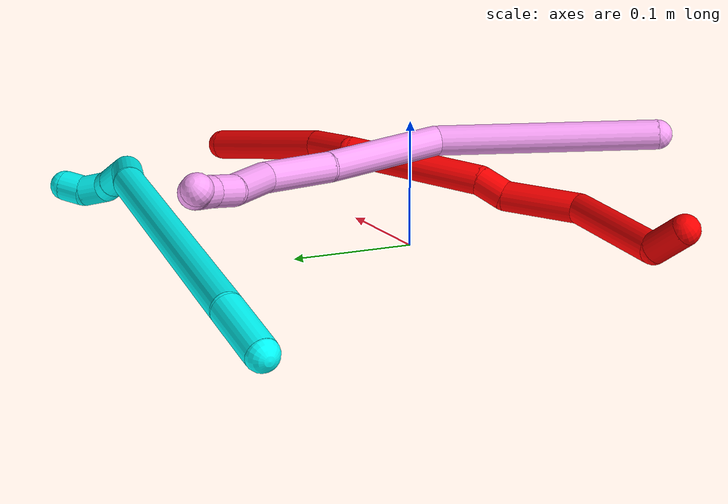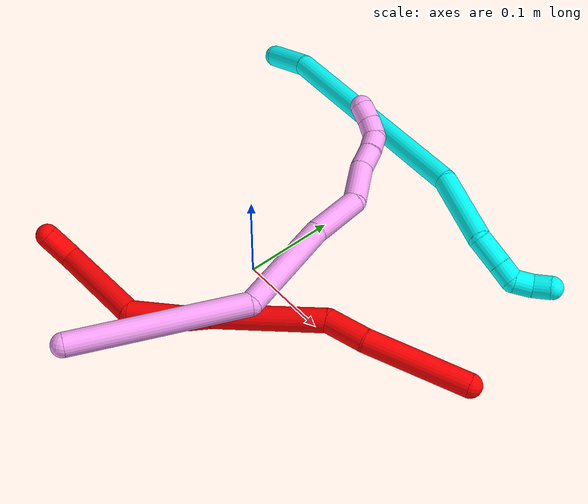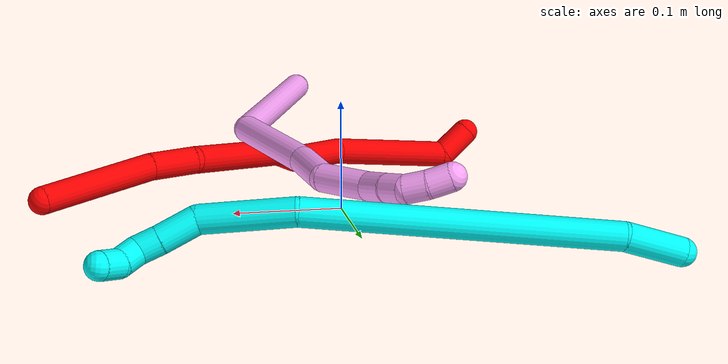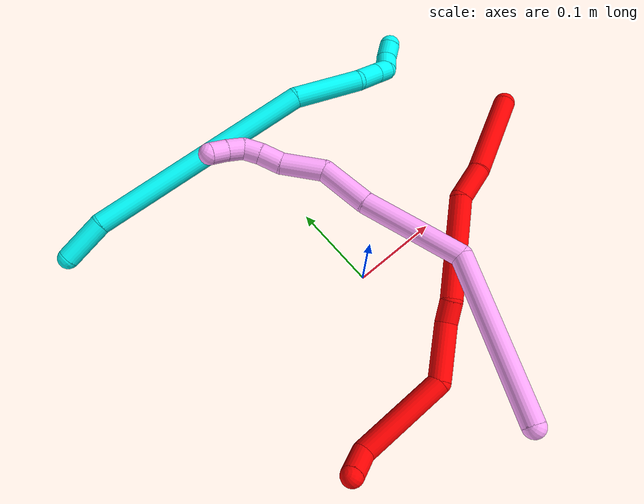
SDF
<sdf version="1.7">
 <world name="default">
  <model name="photoneo_s_sensor">
   <static>1</static>
   <pose>0 0 2 1.57079 1.57079 3.14159</pose>
   <link name="link">
    <inertial><mass>0.1</mass></inertial>
    <sensor name="sensor" type="depth">
     <update_rate>30</update_rate>
     <camera>
      <horizontal_fov>1.22</horizontal_fov>
      <image><width>1920</width><height>1200</height><format>B8G8R8</format></image>
      <clip><near>0.1</near><far>4</far></clip>
      <depth_camera><output>points</output></depth_camera>
     </camera>
     <plugin name="camera_plugin" filename="libgazebo_ros_depth_camera.so">
      <baseline>0.2</baseline>
      <alwaysOn>1</alwaysOn>
      <updateRate>0.0</updateRate>
      <cameraName>camera_ir</cameraName>
      <imageTopicName>/camera/color/image_raw</imageTopicName>
      <cameraInfoTopicName>/camera/color/camera_info</cameraInfoTopicName>
      <depthImageTopicName>/camera/depth/image_raw</depthImageTopicName>
      <depthImageCameraInfoTopicName>/camera/depth/camera_info</depthImageCameraInfoTopicName>
      <pointCloudTopicName>/camera/depth/points</pointCloudTopicName>
      <frameName>fr_optical</frameName>
      <pointCloudCutoff>0.1</pointCloudCutoff>
      <pointCloudCutoffMax>2.0</pointCloudCutoffMax>
      <distortionK1>0</distortionK1>
      <distortionK2>0</distortionK2>
      <distortionK3>0</distortionK3>
      <distortionT1>0</distortionT1>
      <distortionT2>0</distortionT2>
      <CxPrime>0</CxPrime>
      <Cx>0</Cx>
      <Cy>0</Cy>
      <focalLength>0</focalLength>
      <hackBaseline>0</hackBaseline>
     </plugin>
    </sensor>
   </link>
  </model>
  <model name="bin">
   <static>1</static>
   <link name="bottom">
    <collision name="collision-bottom">
     <pose>0 0 -0.01 0 -0 0</pose>
     <geometry><box><size>0.8 0.6 0.02</size></box></geometry>
     <surface>
      <friction><ode><mu>100</mu><mu2>100</mu2></ode></friction>
      <contact><collide_bitmask>65535</collide_bitmask></contact>
     </surface>
    </collision>
   </link>
   <link name="west_wall">
    <collision name="collision-west_wall">
     <pose>-0.41 0 0.1 0 -0 0</pose>
     <geometry><box><size>0.02 0.6 0.2</size></box></geometry>
     <surface>
      <friction><ode><mu>100</mu><mu2>100</mu2></ode></friction>
      <contact><collide_bitmask>65535</collide_bitmask></contact>
     </surface>
    </collision>
   </link>
   <link name="east_wall">
    <collision name="collision-east_wall">
     <pose>0.41 0 0.1 0 -0 0</pose>
     <geometry><box><size>0.02 0.6 0.2</size></box></geometry>
     <surface>
      <friction><ode><mu>100</mu><mu2>100</mu2></ode></friction>
      <contact><collide_bitmask>65535</collide_bitmask></contact>
     </surface>
    </collision>
   </link>
   <link name="south_wall">
    <collision name="collision-south_wall">
     <pose>0 -0.31 0.1 0 -0 0</pose>
     <geometry><box><size>0.8 0.02 0.2</size></box></geometry>
     <surface>
      <friction><ode><mu>100</mu><mu2>100</mu2></ode></friction>
      <contact><collide_bitmask>65535</collide_bitmask></contact>
     </surface>
    </collision>
   </link>
   <link name="north_wall">
    <collision name="collision-north_wall">
     <pose>0 0.31 0.1 0 -0 0</pose>
     <geometry><box><size>0.8 0.02 0.2</size></box></geometry>
     <surface>
      <friction><ode><mu>100</mu><mu2>100</mu2></ode></friction>
      <contact><collide_bitmask>65535</collide_bitmask></contact>
     </surface>
    </collision>
   </link>
  </model>
  <model name="2">
   <static>0</static>
   <link name="2">
    <collision name="collision-cylinder-e_1_1_4">
     <pose>0.008367 0.011527 -0.009245 -2.24677 0.515253 -1.00426</pose>
     <geometry><cylinder><radius>0.0125</radius><length>0.033962</length></cylinder></geometry>
     <surface>
      <friction><ode><mu>1.16</mu><mu2>1.16</mu2><slip1>0</slip1><slip2>0</slip2></ode></friction>
      <contact><ode><kp>1e+06</kp><kd>1</kd><max_vel>0</max_vel><min_depth>0.001</min_depth></ode></contact>
     </surface>
    </collision>
    <visual name="visual-cylinder-e_1_1_4">
     <pose>0.008367 0.011527 -0.009245 -2.24677 0.515253 -1.00426</pose>
     <geometry><cylinder><radius>0.0125</radius><length>0.033962</length></cylinder></geometry>
     <material><ambient>1 0 0 1</ambient></material>
    </visual>
    <collision name="collision-cylinder-e_2_4_5">
     <pose>0.067534 0.030327 -0.033632 -2.69379 1.25144 -2.531</pose>
     <geometry><cylinder><radius>0.0125</radius><length>0.107009</length></cylinder></geometry>
     <surface>
      <friction><ode><mu>1.16</mu><mu2>1.16</mu2><slip1>0</slip1><slip2>0</slip2></ode></friction>
      <contact><ode><kp>1e+06</kp><kd>1</kd><max_vel>0</max_vel><min_depth>0.001</min_depth></ode></contact>
     </surface>
    </collision>
    <visual name="visual-cylinder-e_2_4_5">
     <pose>0.067534 0.030327 -0.033632 -2.69379 1.25144 -2.531</pose>
     <geometry><cylinder><radius>0.0125</radius><length>0.107009</length></cylinder></geometry>
     <material><ambient>1 0 0 1</ambient></material>
    </visual>
    <collision name="collision-cylinder-e_3_5_6">
     <pose>0.142792 0.057993 -0.044683 -1.37284 0.866083 -0.724171</pose>
     <geometry><cylinder><radius>0.0125</radius><length>0.064213</length></cylinder></geometry>
     <surface>
      <friction><ode><mu>1.16</mu><mu2>1.16</mu2><slip1>0</slip1><slip2>0</slip2></ode></friction>
      <contact><ode><kp>1e+06</kp><kd>1</kd><max_vel>0</max_vel><min_depth>0.001</min_depth></ode></contact>
     </surface>
    </collision>
    <visual name="visual-cylinder-e_3_5_6">
     <pose>0.142792 0.057993 -0.044683 -1.37284 0.866083 -0.724171</pose>
     <geometry><cylinder><radius>0.0125</radius><length>0.064213</length></cylinder></geometry>
     <material><ambient>1 0 0 1</ambient></material>
    </visual>
    <collision name="collision-cylinder-e_4_6_7">
     <pose>0.1782 0.082837 -0.036155 -0.786871 1.04969 -0.471725</pose>
     <geometry><cylinder><radius>0.0125</radius><length>0.02525</length></cylinder></geometry>
     <surface>
      <friction><ode><mu>1.16</mu><mu2>1.16</mu2><slip1>0</slip1><slip2>0</slip2></ode></friction>
      <contact><ode><kp>1e+06</kp><kd>1</kd><max_vel>0</max_vel><min_depth>0.001</min_depth></ode></contact>
     </surface>
    </collision>
    <visual name="visual-cylinder-e_4_6_7">
     <pose>0.1782 0.082837 -0.036155 -0.786871 1.04969 -0.471725</pose>
     <geometry><cylinder><radius>0.0125</radius><length>0.02525</length></cylinder></geometry>
     <material><ambient>1 0 0 1</ambient></material>
    </visual>
    <collision name="collision-cylinder-e_5_7_8">
     <pose>0.234054 0.123471 -0.020291 -1.26491 0.869218 -0.655857</pose>
     <geometry><cylinder><radius>0.0125</radius><length>0.11758</length></cylinder></geometry>
     <surface>
      <friction><ode><mu>1.16</mu><mu2>1.16</mu2><slip1>0</slip1><slip2>0</slip2></ode></friction>
      <contact><ode><kp>1e+06</kp><kd>1</kd><max_vel>0</max_vel><min_depth>0.001</min_depth></ode></contact>
     </surface>
    </collision>
    <visual name="visual-cylinder-e_5_7_8">
     <pose>0.234054 0.123471 -0.020291 -1.26491 0.869218 -0.655857</pose>
     <geometry><cylinder><radius>0.0125</radius><length>0.11758</length></cylinder></geometry>
     <material><ambient>1 0 0 1</ambient></material>
    </visual>
    <collision name="collision-cylinder-e_6_8_9">
     <pose>0.297774 0.168598 -0.013191 -2.02139 1.08494 -1.53128</pose>
     <geometry><cylinder><radius>0.0125</radius><length>0.042553</length></cylinder></geometry>
     <surface>
      <friction><ode><mu>1.16</mu><mu2>1.16</mu2><slip1>0</slip1><slip2>0</slip2></ode></friction>
      <contact><ode><kp>1e+06</kp><kd>1</kd><max_vel>0</max_vel><min_depth>0.001</min_depth></ode></contact>
     </surface>
    </collision>
    <visual name="visual-cylinder-e_6_8_9">
     <pose>0.297774 0.168598 -0.013191 -2.02139 1.08494 -1.53128</pose>
     <geometry><cylinder><radius>0.0125</radius><length>0.042553</length></cylinder></geometry>
     <material><ambient>1 0 0 1</ambient></material>
    </visual>
    <collision name="collision-cylinder-e_7_9_2">
     <pose>0.359979 0.209593 -0.026673 -1.84902 0.915744 -1.15734</pose>
     <geometry><cylinder><radius>0.0125</radius><length>0.109434</length></cylinder></geometry>
     <surface>
      <friction><ode><mu>1.16</mu><mu2>1.16</mu2><slip1>0</slip1><slip2>0</slip2></ode></friction>
      <contact><ode><kp>1e+06</kp><kd>1</kd><max_vel>0</max_vel><min_depth>0.001</min_depth></ode></contact>
     </surface>
    </collision>
    <visual name="visual-cylinder-e_7_9_2">
     <pose>0.359979 0.209593 -0.026673 -1.84902 0.915744 -1.15734</pose>
     <geometry><cylinder><radius>0.0125</radius><length>0.109434</length></cylinder></geometry>
     <material><ambient>1 0 0 1</ambient></material>
    </visual>
    <collision name="collision-sphere-2">
     <pose>0.40337 0.241645 -0.035828 0 -0 0</pose>
     <geometry><sphere><radius>0.0125</radius></sphere></geometry>
     <surface>
      <friction><ode><mu>1.16</mu><mu2>1.16</mu2><slip1>0</slip1><slip2>0</slip2></ode></friction>
      <contact><ode><kp>1e+06</kp><kd>1</kd><max_vel>0</max_vel><min_depth>0.001</min_depth></ode></contact>
     </surface>
    </collision>
    <visual name="visual-sphere-2">
     <pose>0.40337 0.241645 -0.035828 0 -0 0</pose>
     <geometry><sphere><radius>0.0125</radius></sphere></geometry>
     <material><ambient>1 0 0 1</ambient></material>
    </visual>
    <collision name="collision-sphere-9">
     <pose>0.316588 0.177541 -0.017518 0 -0 0</pose>
     <geometry><sphere><radius>0.0125</radius></sphere></geometry>
     <surface>
      <friction><ode><mu>1.16</mu><mu2>1.16</mu2><slip1>0</slip1><slip2>0</slip2></ode></friction>
      <contact><ode><kp>1e+06</kp><kd>1</kd><max_vel>0</max_vel><min_depth>0.001</min_depth></ode></contact>
     </surface>
    </collision>
    <visual name="visual-sphere-9">
     <pose>0.316588 0.177541 -0.017518 0 -0 0</pose>
     <geometry><sphere><radius>0.0125</radius></sphere></geometry>
     <material><ambient>1 0 0 1</ambient></material>
    </visual>
    <collision name="collision-sphere-4">
     <pose>0.016735 0.023054 -0.01849 0 -0 0</pose>
     <geometry><sphere><radius>0.0125</radius></sphere></geometry>
     <surface>
      <friction><ode><mu>1.16</mu><mu2>1.16</mu2><slip1>0</slip1><slip2>0</slip2></ode></friction>
      <contact><ode><kp>1e+06</kp><kd>1</kd><max_vel>0</max_vel><min_depth>0.001</min_depth></ode></contact>
     </surface>
    </collision>
    <visual name="visual-sphere-4">
     <pose>0.016735 0.023054 -0.01849 0 -0 0</pose>
     <geometry><sphere><radius>0.0125</radius></sphere></geometry>
     <material><ambient>1 0 0 1</ambient></material>
    </visual>
    <collision name="collision-sphere-1">
     <geometry><sphere><radius>0.0125</radius></sphere></geometry>
     <surface>
      <friction><ode><mu>1.16</mu><mu2>1.16</mu2><slip1>0</slip1><slip2>0</slip2></ode></friction>
      <contact><ode><kp>1e+06</kp><kd>1</kd><max_vel>0</max_vel><min_depth>0.001</min_depth></ode></contact>
     </surface>
    </collision>
    <visual name="visual-sphere-1">
     <geometry><sphere><radius>0.0125</radius></sphere></geometry>
     <material><ambient>1 0 0 1</ambient></material>
    </visual>
    <collision name="collision-sphere-8">
     <pose>0.27896 0.159654 -0.008864 0 -0 0</pose>
     <geometry><sphere><radius>0.0125</radius></sphere></geometry>
     <surface>
      <friction><ode><mu>1.16</mu><mu2>1.16</mu2><slip1>0</slip1><slip2>0</slip2></ode></friction>
      <contact><ode><kp>1e+06</kp><kd>1</kd><max_vel>0</max_vel><min_depth>0.001</min_depth></ode></contact>
     </surface>
    </collision>
    <visual name="visual-sphere-8">
     <pose>0.27896 0.159654 -0.008864 0 -0 0</pose>
     <geometry><sphere><radius>0.0125</radius></sphere></geometry>
     <material><ambient>1 0 0 1</ambient></material>
    </visual>
    <collision name="collision-sphere-5">
     <pose>0.118334 0.037601 -0.048773 0 -0 0</pose>
     <geometry><sphere><radius>0.0125</radius></sphere></geometry>
     <surface>
      <friction><ode><mu>1.16</mu><mu2>1.16</mu2><slip1>0</slip1><slip2>0</slip2></ode></friction>
      <contact><ode><kp>1e+06</kp><kd>1</kd><max_vel>0</max_vel><min_depth>0.001</min_depth></ode></contact>
     </surface>
    </collision>
    <visual name="visual-sphere-5">
     <pose>0.118334 0.037601 -0.048773 0 -0 0</pose>
     <geometry><sphere><radius>0.0125</radius></sphere></geometry>
     <material><ambient>1 0 0 1</ambient></material>
    </visual>
    <collision name="collision-sphere-6">
     <pose>0.167251 0.078386 -0.040593 0 -0 0</pose>
     <geometry><sphere><radius>0.0125</radius></sphere></geometry>
     <surface>
      <friction><ode><mu>1.16</mu><mu2>1.16</mu2><slip1>0</slip1><slip2>0</slip2></ode></friction>
      <contact><ode><kp>1e+06</kp><kd>1</kd><max_vel>0</max_vel><min_depth>0.001</min_depth></ode></contact>
     </surface>
    </collision>
    <visual name="visual-sphere-6">
     <pose>0.167251 0.078386 -0.040593 0 -0 0</pose>
     <geometry><sphere><radius>0.0125</radius></sphere></geometry>
     <material><ambient>1 0 0 1</ambient></material>
    </visual>
    <collision name="collision-sphere-7">
     <pose>0.189149 0.087288 -0.031717 0 -0 0</pose>
     <geometry><sphere><radius>0.0125</radius></sphere></geometry>
     <surface>
      <friction><ode><mu>1.16</mu><mu2>1.16</mu2><slip1>0</slip1><slip2>0</slip2></ode></friction>
      <contact><ode><kp>1e+06</kp><kd>1</kd><max_vel>0</max_vel><min_depth>0.001</min_depth></ode></contact>
     </surface>
    </collision>
    <visual name="visual-sphere-7">
     <pose>0.189149 0.087288 -0.031717 0 -0 0</pose>
     <geometry><sphere><radius>0.0125</radius></sphere></geometry>
     <material><ambient>1 0 0 1</ambient></material>
    </visual>
    <inertial>
     <pose>0.201529 0.108162 -0.027122 0 -0 0</pose>
     <mass>0.5</mass>
     <inertia>
      <ixx>-3.7e-05</ixx>
      <ixy>0</ixy>
      <ixz>0</ixz>
      <iyy>0.000153</iyy>
      <iyz>0</iyz>
      <izz>-0.000521</izz>
     </inertia>
    </inertial>
   </link>
   <pose>-0.154622 -0.153998 0.031122 -0.58865 -0.392693 0.052318</pose>
  </model>
  <model name="3">
   <static>0</static>
   <link name="3">
    <collision name="collision-cylinder-e_1_1_4">
     <pose>-0.002342 -0.003995 0.026453 0.149885 -0.087331 -0.006561</pose>
     <geometry><cylinder><radius>0.0125</radius><length>0.05371</length></cylinder></geometry>
     <surface>
      <friction><ode><mu>1.16</mu><mu2>1.16</mu2><slip1>0</slip1><slip2>0</slip2></ode></friction>
      <contact><ode><kp>1e+06</kp><kd>1</kd><max_vel>0</max_vel><min_depth>0.001</min_depth></ode></contact>
     </surface>
    </collision>
    <visual name="visual-cylinder-e_1_1_4">
     <pose>-0.002342 -0.003995 0.026453 0.149885 -0.087331 -0.006561</pose>
     <geometry><cylinder><radius>0.0125</radius><length>0.05371</length></cylinder></geometry>
     <material><ambient>0.003922 1 0.996078 1</ambient></material>
    </visual>
    <collision name="collision-cylinder-e_2_4_5">
     <pose>0.014956 -0.010882 0.185137 0.02187 0.147422 0.001615</pose>
     <geometry><cylinder><radius>0.0125</radius><length>0.267428</length></cylinder></geometry>
     <surface>
      <friction><ode><mu>1.16</mu><mu2>1.16</mu2><slip1>0</slip1><slip2>0</slip2></ode></friction>
      <contact><ode><kp>1e+06</kp><kd>1</kd><max_vel>0</max_vel><min_depth>0.001</min_depth></ode></contact>
     </surface>
    </collision>
    <visual name="visual-cylinder-e_2_4_5">
     <pose>0.014956 -0.010882 0.185137 0.02187 0.147422 0.001615</pose>
     <geometry><cylinder><radius>0.0125</radius><length>0.267428</length></cylinder></geometry>
     <material><ambient>0.003922 1 0.996078 1</ambient></material>
    </visual>
    <collision name="collision-cylinder-e_3_5_6">
     <pose>0.051851 -0.010716 0.354505 -0.082171 0.433649 -0.018111</pose>
     <geometry><cylinder><radius>0.0125</radius><length>0.082126</length></cylinder></geometry>
     <surface>
      <friction><ode><mu>1.16</mu><mu2>1.16</mu2><slip1>0</slip1><slip2>0</slip2></ode></friction>
      <contact><ode><kp>1e+06</kp><kd>1</kd><max_vel>0</max_vel><min_depth>0.001</min_depth></ode></contact>
     </surface>
    </collision>
    <visual name="visual-cylinder-e_3_5_6">
     <pose>0.051851 -0.010716 0.354505 -0.082171 0.433649 -0.018111</pose>
     <geometry><cylinder><radius>0.0125</radius><length>0.082126</length></cylinder></geometry>
     <material><ambient>0.003922 1 0.996078 1</ambient></material>
    </visual>
    <collision name="collision-cylinder-e_4_6_7">
     <pose>0.073345 0.001081 0.405687 -0.556521 0.25089 -0.072019</pose>
     <geometry><cylinder><radius>0.0125</radius><length>0.034154</length></cylinder></geometry>
     <surface>
      <friction><ode><mu>1.16</mu><mu2>1.16</mu2><slip1>0</slip1><slip2>0</slip2></ode></friction>
      <contact><ode><kp>1e+06</kp><kd>1</kd><max_vel>0</max_vel><min_depth>0.001</min_depth></ode></contact>
     </surface>
    </collision>
    <visual name="visual-cylinder-e_4_6_7">
     <pose>0.073345 0.001081 0.405687 -0.556521 0.25089 -0.072019</pose>
     <geometry><cylinder><radius>0.0125</radius><length>0.034154</length></cylinder></geometry>
     <material><ambient>0.003922 1 0.996078 1</ambient></material>
    </visual>
    <collision name="collision-cylinder-e_5_7_8">
     <pose>0.080434 0.014571 0.428564 -0.493674 0.276869 -0.070185</pose>
     <geometry><cylinder><radius>0.0125</radius><length>0.020851</length></cylinder></geometry>
     <surface>
      <friction><ode><mu>1.16</mu><mu2>1.16</mu2><slip1>0</slip1><slip2>0</slip2></ode></friction>
      <contact><ode><kp>1e+06</kp><kd>1</kd><max_vel>0</max_vel><min_depth>0.001</min_depth></ode></contact>
     </surface>
    </collision>
    <visual name="visual-cylinder-e_5_7_8">
     <pose>0.080434 0.014571 0.428564 -0.493674 0.276869 -0.070185</pose>
     <geometry><cylinder><radius>0.0125</radius><length>0.020851</length></cylinder></geometry>
     <material><ambient>0.003922 1 0.996078 1</ambient></material>
    </visual>
    <collision name="collision-cylinder-e_6_8_9">
     <pose>0.078575 0.025747 0.444765 -0.716939 -0.448884 0.170644</pose>
     <geometry><cylinder><radius>0.0125</radius><length>0.021704</length></cylinder></geometry>
     <surface>
      <friction><ode><mu>1.16</mu><mu2>1.16</mu2><slip1>0</slip1><slip2>0</slip2></ode></friction>
      <contact><ode><kp>1e+06</kp><kd>1</kd><max_vel>0</max_vel><min_depth>0.001</min_depth></ode></contact>
     </surface>
    </collision>
    <visual name="visual-cylinder-e_6_8_9">
     <pose>0.078575 0.025747 0.444765 -0.716939 -0.448884 0.170644</pose>
     <geometry><cylinder><radius>0.0125</radius><length>0.021704</length></cylinder></geometry>
     <material><ambient>0.003922 1 0.996078 1</ambient></material>
    </visual>
    <collision name="collision-cylinder-e_7_9_2">
     <pose>0.068927 0.034461 0.460541 -0.265892 -0.515671 0.070504</pose>
     <geometry><cylinder><radius>0.0125</radius><length>0.020028</length></cylinder></geometry>
     <surface>
      <friction><ode><mu>1.16</mu><mu2>1.16</mu2><slip1>0</slip1><slip2>0</slip2></ode></friction>
      <contact><ode><kp>1e+06</kp><kd>1</kd><max_vel>0</max_vel><min_depth>0.001</min_depth></ode></contact>
     </surface>
    </collision>
    <visual name="visual-cylinder-e_7_9_2">
     <pose>0.068927 0.034461 0.460541 -0.265892 -0.515671 0.070504</pose>
     <geometry><cylinder><radius>0.0125</radius><length>0.020028</length></cylinder></geometry>
     <material><ambient>0.003922 1 0.996078 1</ambient></material>
    </visual>
    <collision name="collision-sphere-2">
     <pose>0.063989 0.03675 0.468947 0 -0 0</pose>
     <geometry><sphere><radius>0.0125</radius></sphere></geometry>
     <surface>
      <friction><ode><mu>1.16</mu><mu2>1.16</mu2><slip1>0</slip1><slip2>0</slip2></ode></friction>
      <contact><ode><kp>1e+06</kp><kd>1</kd><max_vel>0</max_vel><min_depth>0.001</min_depth></ode></contact>
     </surface>
    </collision>
    <visual name="visual-sphere-2">
     <pose>0.063989 0.03675 0.468947 0 -0 0</pose>
     <geometry><sphere><radius>0.0125</radius></sphere></geometry>
     <material><ambient>0.003922 1 0.996078 1</ambient></material>
    </visual>
    <collision name="collision-sphere-9">
     <pose>0.073865 0.032172 0.452135 0 -0 0</pose>
     <geometry><sphere><radius>0.0125</radius></sphere></geometry>
     <surface>
      <friction><ode><mu>1.16</mu><mu2>1.16</mu2><slip1>0</slip1><slip2>0</slip2></ode></friction>
      <contact><ode><kp>1e+06</kp><kd>1</kd><max_vel>0</max_vel><min_depth>0.001</min_depth></ode></contact>
     </surface>
    </collision>
    <visual name="visual-sphere-9">
     <pose>0.073865 0.032172 0.452135 0 -0 0</pose>
     <geometry><sphere><radius>0.0125</radius></sphere></geometry>
     <material><ambient>0.003922 1 0.996078 1</ambient></material>
    </visual>
    <collision name="collision-sphere-4">
     <pose>-0.004685 -0.00799 0.052905 0 -0 0</pose>
     <geometry><sphere><radius>0.0125</radius></sphere></geometry>
     <surface>
      <friction><ode><mu>1.16</mu><mu2>1.16</mu2><slip1>0</slip1><slip2>0</slip2></ode></friction>
      <contact><ode><kp>1e+06</kp><kd>1</kd><max_vel>0</max_vel><min_depth>0.001</min_depth></ode></contact>
     </surface>
    </collision>
    <visual name="visual-sphere-4">
     <pose>-0.004685 -0.00799 0.052905 0 -0 0</pose>
     <geometry><sphere><radius>0.0125</radius></sphere></geometry>
     <material><ambient>0.003922 1 0.996078 1</ambient></material>
    </visual>
    <collision name="collision-sphere-1">
     <geometry><sphere><radius>0.0125</radius></sphere></geometry>
     <surface>
      <friction><ode><mu>1.16</mu><mu2>1.16</mu2><slip1>0</slip1><slip2>0</slip2></ode></friction>
      <contact><ode><kp>1e+06</kp><kd>1</kd><max_vel>0</max_vel><min_depth>0.001</min_depth></ode></contact>
     </surface>
    </collision>
    <visual name="visual-sphere-1">
     <geometry><sphere><radius>0.0125</radius></sphere></geometry>
     <material><ambient>0.003922 1 0.996078 1</ambient></material>
    </visual>
    <collision name="collision-sphere-8">
     <pose>0.083284 0.019323 0.437395 0 -0 0</pose>
     <geometry><sphere><radius>0.0125</radius></sphere></geometry>
     <surface>
      <friction><ode><mu>1.16</mu><mu2>1.16</mu2><slip1>0</slip1><slip2>0</slip2></ode></friction>
      <contact><ode><kp>1e+06</kp><kd>1</kd><max_vel>0</max_vel><min_depth>0.001</min_depth></ode></contact>
     </surface>
    </collision>
    <visual name="visual-sphere-8">
     <pose>0.083284 0.019323 0.437395 0 -0 0</pose>
     <geometry><sphere><radius>0.0125</radius></sphere></geometry>
     <material><ambient>0.003922 1 0.996078 1</ambient></material>
    </visual>
    <collision name="collision-sphere-5">
     <pose>0.034597 -0.013774 0.317369 0 -0 0</pose>
     <geometry><sphere><radius>0.0125</radius></sphere></geometry>
     <surface>
      <friction><ode><mu>1.16</mu><mu2>1.16</mu2><slip1>0</slip1><slip2>0</slip2></ode></friction>
      <contact><ode><kp>1e+06</kp><kd>1</kd><max_vel>0</max_vel><min_depth>0.001</min_depth></ode></contact>
     </surface>
    </collision>
    <visual name="visual-sphere-5">
     <pose>0.034597 -0.013774 0.317369 0 -0 0</pose>
     <geometry><sphere><radius>0.0125</radius></sphere></geometry>
     <material><ambient>0.003922 1 0.996078 1</ambient></material>
    </visual>
    <collision name="collision-sphere-6">
     <pose>0.069105 -0.007658 0.391641 0 -0 0</pose>
     <geometry><sphere><radius>0.0125</radius></sphere></geometry>
     <surface>
      <friction><ode><mu>1.16</mu><mu2>1.16</mu2><slip1>0</slip1><slip2>0</slip2></ode></friction>
      <contact><ode><kp>1e+06</kp><kd>1</kd><max_vel>0</max_vel><min_depth>0.001</min_depth></ode></contact>
     </surface>
    </collision>
    <visual name="visual-sphere-6">
     <pose>0.069105 -0.007658 0.391641 0 -0 0</pose>
     <geometry><sphere><radius>0.0125</radius></sphere></geometry>
     <material><ambient>0.003922 1 0.996078 1</ambient></material>
    </visual>
    <collision name="collision-sphere-7">
     <pose>0.077585 0.009819 0.419733 0 -0 0</pose>
     <geometry><sphere><radius>0.0125</radius></sphere></geometry>
     <surface>
      <friction><ode><mu>1.16</mu><mu2>1.16</mu2><slip1>0</slip1><slip2>0</slip2></ode></friction>
      <contact><ode><kp>1e+06</kp><kd>1</kd><max_vel>0</max_vel><min_depth>0.001</min_depth></ode></contact>
     </surface>
    </collision>
    <visual name="visual-sphere-7">
     <pose>0.077585 0.009819 0.419733 0 -0 0</pose>
     <geometry><sphere><radius>0.0125</radius></sphere></geometry>
     <material><ambient>0.003922 1 0.996078 1</ambient></material>
    </visual>
    <inertial>
     <pose>0.030801 -0.00483 0.243428 0 -0 0</pose>
     <mass>0.5</mass>
     <inertia>
      <ixx>0.001662</ixx>
      <ixy>0</ixy>
      <ixz>0</ixz>
      <iyy>0.001681</iyy>
      <iyz>0</iyz>
      <izz>-0.00019</izz>
     </inertia>
    </inertial>
   </link>
   <pose>-0.243044 0.229548 0.012334 -1.40903 0.436022 -1.4565</pose>
  </model>
  <model name="4">
   <static>0</static>
   <link name="4">
    <collision name="collision-cylinder-e_1_1_4">
     <pose>0.008495 0.085479 0.034508 -1.1871 0.091894 -0.062026</pose>
     <geometry><cylinder><radius>0.0125</radius><length>0.185145</length></cylinder></geometry>
     <surface>
      <friction><ode><mu>1.16</mu><mu2>1.16</mu2><slip1>0</slip1><slip2>0</slip2></ode></friction>
      <contact><ode><kp>1e+06</kp><kd>1</kd><max_vel>0</max_vel><min_depth>0.001</min_depth></ode></contact>
     </surface>
    </collision>
    <visual name="visual-cylinder-e_1_1_4">
     <pose>0.008495 0.085479 0.034508 -1.1871 0.091894 -0.062026</pose>
     <geometry><cylinder><radius>0.0125</radius><length>0.185145</length></cylinder></geometry>
     <material><ambient>1 0.65098 0.996078 1</ambient></material>
    </visual>
    <collision name="collision-cylinder-e_2_4_5">
     <pose>-0.006857 0.205543 0.110876 -0.690516 -0.413818 0.15071</pose>
     <geometry><cylinder><radius>0.0125</radius><length>0.118608</length></cylinder></geometry>
     <surface>
      <friction><ode><mu>1.16</mu><mu2>1.16</mu2><slip1>0</slip1><slip2>0</slip2></ode></friction>
      <contact><ode><kp>1e+06</kp><kd>1</kd><max_vel>0</max_vel><min_depth>0.001</min_depth></ode></contact>
     </surface>
    </collision>
    <visual name="visual-cylinder-e_2_4_5">
     <pose>-0.006857 0.205543 0.110876 -0.690516 -0.413818 0.15071</pose>
     <geometry><cylinder><radius>0.0125</radius><length>0.118608</length></cylinder></geometry>
     <material><ambient>1 0.65098 0.996078 1</ambient></material>
    </visual>
    <collision name="collision-cylinder-e_3_5_6">
     <pose>-0.039248 0.260921 0.172573 -0.808929 -0.288986 0.124412</pose>
     <geometry><cylinder><radius>0.0125</radius><length>0.059963</length></cylinder></geometry>
     <surface>
      <friction><ode><mu>1.16</mu><mu2>1.16</mu2><slip1>0</slip1><slip2>0</slip2></ode></friction>
      <contact><ode><kp>1e+06</kp><kd>1</kd><max_vel>0</max_vel><min_depth>0.001</min_depth></ode></contact>
     </surface>
    </collision>
    <visual name="visual-cylinder-e_3_5_6">
     <pose>-0.039248 0.260921 0.172573 -0.808929 -0.288986 0.124412</pose>
     <geometry><cylinder><radius>0.0125</radius><length>0.059963</length></cylinder></geometry>
     <material><ambient>1 0.65098 0.996078 1</ambient></material>
    </visual>
    <collision name="collision-cylinder-e_4_6_7">
     <pose>-0.062124 0.287514 0.211965 -0.288293 -0.612515 0.091732</pose>
     <geometry><cylinder><radius>0.0125</radius><length>0.049857</length></cylinder></geometry>
     <surface>
      <friction><ode><mu>1.16</mu><mu2>1.16</mu2><slip1>0</slip1><slip2>0</slip2></ode></friction>
      <contact><ode><kp>1e+06</kp><kd>1</kd><max_vel>0</max_vel><min_depth>0.001</min_depth></ode></contact>
     </surface>
    </collision>
    <visual name="visual-cylinder-e_4_6_7">
     <pose>-0.062124 0.287514 0.211965 -0.288293 -0.612515 0.091732</pose>
     <geometry><cylinder><radius>0.0125</radius><length>0.049857</length></cylinder></geometry>
     <material><ambient>1 0.65098 0.996078 1</ambient></material>
    </visual>
    <collision name="collision-cylinder-e_5_7_8">
     <pose>-0.081074 0.298321 0.242455 -0.429474 -0.366605 0.08082</pose>
     <geometry><cylinder><radius>0.0125</radius><length>0.025766</length></cylinder></geometry>
     <surface>
      <friction><ode><mu>1.16</mu><mu2>1.16</mu2><slip1>0</slip1><slip2>0</slip2></ode></friction>
      <contact><ode><kp>1e+06</kp><kd>1</kd><max_vel>0</max_vel><min_depth>0.001</min_depth></ode></contact>
     </surface>
    </collision>
    <visual name="visual-cylinder-e_5_7_8">
     <pose>-0.081074 0.298321 0.242455 -0.429474 -0.366605 0.08082</pose>
     <geometry><cylinder><radius>0.0125</radius><length>0.025766</length></cylinder></geometry>
     <material><ambient>1 0.65098 0.996078 1</ambient></material>
    </visual>
    <collision name="collision-cylinder-e_6_8_9">
     <pose>-0.090199 0.306063 0.261955 -0.308983 -0.464668 0.073661</pose>
     <geometry><cylinder><radius>0.0125</radius><length>0.020114</length></cylinder></geometry>
     <surface>
      <friction><ode><mu>1.16</mu><mu2>1.16</mu2><slip1>0</slip1><slip2>0</slip2></ode></friction>
      <contact><ode><kp>1e+06</kp><kd>1</kd><max_vel>0</max_vel><min_depth>0.001</min_depth></ode></contact>
     </surface>
    </collision>
    <visual name="visual-cylinder-e_6_8_9">
     <pose>-0.090199 0.306063 0.261955 -0.308983 -0.464668 0.073661</pose>
     <geometry><cylinder><radius>0.0125</radius><length>0.020114</length></cylinder></geometry>
     <material><ambient>1 0.65098 0.996078 1</ambient></material>
    </visual>
    <collision name="collision-cylinder-e_7_9_10">
     <pose>-0.099852 0.306001 0.278815 0.325153 -0.531491 -0.08923</pose>
     <geometry><cylinder><radius>0.0125</radius><length>0.020307</length></cylinder></geometry>
     <surface>
      <friction><ode><mu>1.16</mu><mu2>1.16</mu2><slip1>0</slip1><slip2>0</slip2></ode></friction>
      <contact><ode><kp>1e+06</kp><kd>1</kd><max_vel>0</max_vel><min_depth>0.001</min_depth></ode></contact>
     </surface>
    </collision>
    <visual name="visual-cylinder-e_7_9_10">
     <pose>-0.099852 0.306001 0.278815 0.325153 -0.531491 -0.08923</pose>
     <geometry><cylinder><radius>0.0125</radius><length>0.020307</length></cylinder></geometry>
     <material><ambient>1 0.65098 0.996078 1</ambient></material>
    </visual>
    <collision name="collision-cylinder-e_8_10_2">
     <pose>-0.10944 0.298811 0.295068 0.504386 -0.45449 -0.11903</pose>
     <geometry><cylinder><radius>0.0125</radius><length>0.020238</length></cylinder></geometry>
     <surface>
      <friction><ode><mu>1.16</mu><mu2>1.16</mu2><slip1>0</slip1><slip2>0</slip2></ode></friction>
      <contact><ode><kp>1e+06</kp><kd>1</kd><max_vel>0</max_vel><min_depth>0.001</min_depth></ode></contact>
     </surface>
    </collision>
    <visual name="visual-cylinder-e_8_10_2">
     <pose>-0.10944 0.298811 0.295068 0.504386 -0.45449 -0.11903</pose>
     <geometry><cylinder><radius>0.0125</radius><length>0.020238</length></cylinder></geometry>
     <material><ambient>1 0.65098 0.996078 1</ambient></material>
    </visual>
    <collision name="collision-sphere-2">
     <pose>-0.113882 0.294417 0.303028 0 -0 0</pose>
     <geometry><sphere><radius>0.0125</radius></sphere></geometry>
     <surface>
      <friction><ode><mu>1.16</mu><mu2>1.16</mu2><slip1>0</slip1><slip2>0</slip2></ode></friction>
      <contact><ode><kp>1e+06</kp><kd>1</kd><max_vel>0</max_vel><min_depth>0.001</min_depth></ode></contact>
     </surface>
    </collision>
    <visual name="visual-sphere-2">
     <pose>-0.113882 0.294417 0.303028 0 -0 0</pose>
     <geometry><sphere><radius>0.0125</radius></sphere></geometry>
     <material><ambient>1 0.65098 0.996078 1</ambient></material>
    </visual>
    <collision name="collision-sphere-10">
     <pose>-0.104998 0.303205 0.287109 0 -0 0</pose>
     <geometry><sphere><radius>0.0125</radius></sphere></geometry>
     <surface>
      <friction><ode><mu>1.16</mu><mu2>1.16</mu2><slip1>0</slip1><slip2>0</slip2></ode></friction>
      <contact><ode><kp>1e+06</kp><kd>1</kd><max_vel>0</max_vel><min_depth>0.001</min_depth></ode></contact>
     </surface>
    </collision>
    <visual name="visual-sphere-10">
     <pose>-0.104998 0.303205 0.287109 0 -0 0</pose>
     <geometry><sphere><radius>0.0125</radius></sphere></geometry>
     <material><ambient>1 0.65098 0.996078 1</ambient></material>
    </visual>
    <collision name="collision-sphere-9">
     <pose>-0.094706 0.308797 0.27052 0 -0 0</pose>
     <geometry><sphere><radius>0.0125</radius></sphere></geometry>
     <surface>
      <friction><ode><mu>1.16</mu><mu2>1.16</mu2><slip1>0</slip1><slip2>0</slip2></ode></friction>
      <contact><ode><kp>1e+06</kp><kd>1</kd><max_vel>0</max_vel><min_depth>0.001</min_depth></ode></contact>
     </surface>
    </collision>
    <visual name="visual-sphere-9">
     <pose>-0.094706 0.308797 0.27052 0 -0 0</pose>
     <geometry><sphere><radius>0.0125</radius></sphere></geometry>
     <material><ambient>1 0.65098 0.996078 1</ambient></material>
    </visual>
    <collision name="collision-sphere-4">
     <pose>0.01699 0.170958 0.069016 0 -0 0</pose>
     <geometry><sphere><radius>0.0125</radius></sphere></geometry>
     <surface>
      <friction><ode><mu>1.16</mu><mu2>1.16</mu2><slip1>0</slip1><slip2>0</slip2></ode></friction>
      <contact><ode><kp>1e+06</kp><kd>1</kd><max_vel>0</max_vel><min_depth>0.001</min_depth></ode></contact>
     </surface>
    </collision>
    <visual name="visual-sphere-4">
     <pose>0.01699 0.170958 0.069016 0 -0 0</pose>
     <geometry><sphere><radius>0.0125</radius></sphere></geometry>
     <material><ambient>1 0.65098 0.996078 1</ambient></material>
    </visual>
    <collision name="collision-sphere-1">
     <geometry><sphere><radius>0.0125</radius></sphere></geometry>
     <surface>
      <friction><ode><mu>1.16</mu><mu2>1.16</mu2><slip1>0</slip1><slip2>0</slip2></ode></friction>
      <contact><ode><kp>1e+06</kp><kd>1</kd><max_vel>0</max_vel><min_depth>0.001</min_depth></ode></contact>
     </surface>
    </collision>
    <visual name="visual-sphere-1">
     <geometry><sphere><radius>0.0125</radius></sphere></geometry>
     <material><ambient>1 0.65098 0.996078 1</ambient></material>
    </visual>
    <collision name="collision-sphere-8">
     <pose>-0.085692 0.303329 0.25339 0 -0 0</pose>
     <geometry><sphere><radius>0.0125</radius></sphere></geometry>
     <surface>
      <friction><ode><mu>1.16</mu><mu2>1.16</mu2><slip1>0</slip1><slip2>0</slip2></ode></friction>
      <contact><ode><kp>1e+06</kp><kd>1</kd><max_vel>0</max_vel><min_depth>0.001</min_depth></ode></contact>
     </surface>
    </collision>
    <visual name="visual-sphere-8">
     <pose>-0.085692 0.303329 0.25339 0 -0 0</pose>
     <geometry><sphere><radius>0.0125</radius></sphere></geometry>
     <material><ambient>1 0.65098 0.996078 1</ambient></material>
    </visual>
    <collision name="collision-sphere-5">
     <pose>-0.030703 0.240128 0.152736 0 -0 0</pose>
     <geometry><sphere><radius>0.0125</radius></sphere></geometry>
     <surface>
      <friction><ode><mu>1.16</mu><mu2>1.16</mu2><slip1>0</slip1><slip2>0</slip2></ode></friction>
      <contact><ode><kp>1e+06</kp><kd>1</kd><max_vel>0</max_vel><min_depth>0.001</min_depth></ode></contact>
     </surface>
    </collision>
    <visual name="visual-sphere-5">
     <pose>-0.030703 0.240128 0.152736 0 -0 0</pose>
     <geometry><sphere><radius>0.0125</radius></sphere></geometry>
     <material><ambient>1 0.65098 0.996078 1</ambient></material>
    </visual>
    <collision name="collision-sphere-6">
     <pose>-0.047792 0.281715 0.19241 0 -0 0</pose>
     <geometry><sphere><radius>0.0125</radius></sphere></geometry>
     <surface>
      <friction><ode><mu>1.16</mu><mu2>1.16</mu2><slip1>0</slip1><slip2>0</slip2></ode></friction>
      <contact><ode><kp>1e+06</kp><kd>1</kd><max_vel>0</max_vel><min_depth>0.001</min_depth></ode></contact>
     </surface>
    </collision>
    <visual name="visual-sphere-6">
     <pose>-0.047792 0.281715 0.19241 0 -0 0</pose>
     <geometry><sphere><radius>0.0125</radius></sphere></geometry>
     <material><ambient>1 0.65098 0.996078 1</ambient></material>
    </visual>
    <collision name="collision-sphere-7">
     <pose>-0.076456 0.293313 0.23152 0 -0 0</pose>
     <geometry><sphere><radius>0.0125</radius></sphere></geometry>
     <surface>
      <friction><ode><mu>1.16</mu><mu2>1.16</mu2><slip1>0</slip1><slip2>0</slip2></ode></friction>
      <contact><ode><kp>1e+06</kp><kd>1</kd><max_vel>0</max_vel><min_depth>0.001</min_depth></ode></contact>
     </surface>
    </collision>
    <visual name="visual-sphere-7">
     <pose>-0.076456 0.293313 0.23152 0 -0 0</pose>
     <geometry><sphere><radius>0.0125</radius></sphere></geometry>
     <material><ambient>1 0.65098 0.996078 1</ambient></material>
    </visual>
    <inertial>
     <pose>-0.025674 0.19258 0.127211 0 -0 0</pose>
     <mass>0.5</mass>
     <inertia>
      <ixx>0.000679</ixx>
      <ixy>0</ixy>
      <ixz>0</ixz>
      <iyy>0.000364</iyy>
      <iyz>0</iyz>
      <izz>-0.000548</izz>
     </inertia>
    </inertial>
   </link>
   <pose>0.004649 -0.233414 0.067738 -0.50138 -0.770624 -0.256867</pose>
  </model>
 </world>
</sdf>
